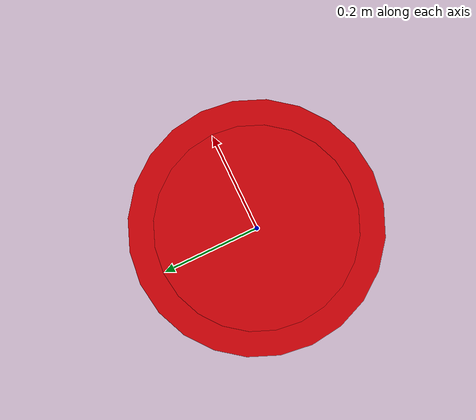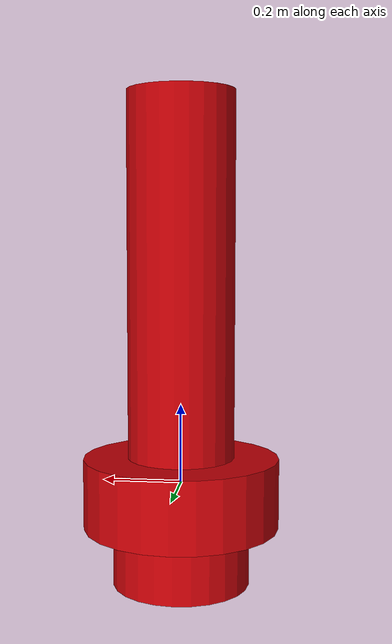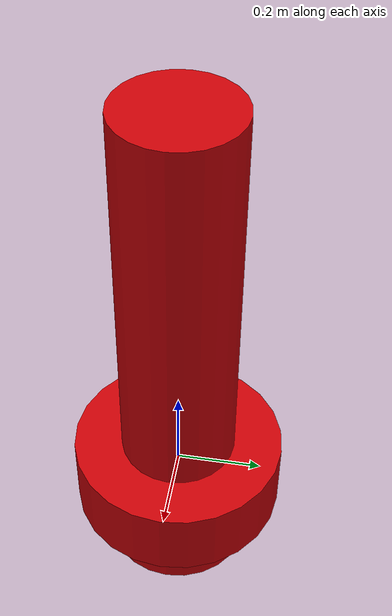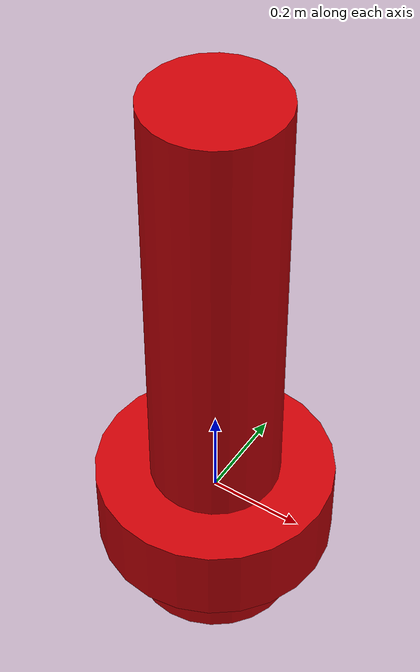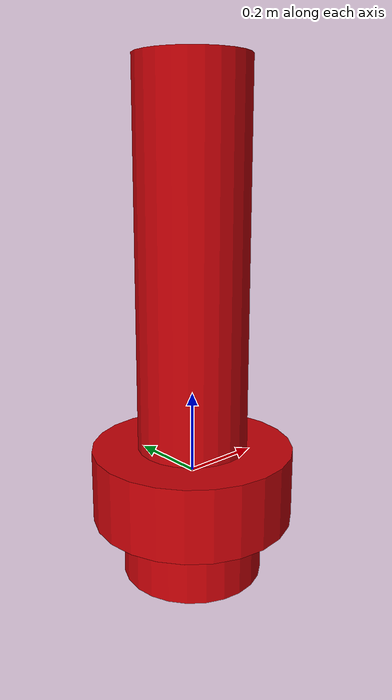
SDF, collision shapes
<?xml version="1.0"?>
<sdf version="1.9">
  <model name="roboboat_surmark_950410_red">
    <link name="link">
      <inertial>
        <pose>0 0 -0.2648 0 0 0</pose>
        <mass>34.8721</mass>
        <inertia>
          <ixx>4.73679</ixx>
          <ixy>0</ixy>
          <ixz>0</ixz>
          <iyy>4.73679</iyy>
          <iyz>0</iyz>
          <izz>0.392311</izz>
        </inertia>
      </inertial>
      <collision name="skirt_collision">
        <pose>0 0 -0.1899 0 0 0</pose>
        <geometry>
          <cylinder><radius>0.175</radius><length>0.1498</length></cylinder>
        </geometry>
      </collision>
      <collision name="ring_collision">
        <pose>0 0 -0.025 0 0 0</pose>
        <geometry>
          <cylinder><radius>0.25</radius><length>0.18</length></cylinder>
        </geometry>
      </collision>
      <collision name="column_collision">
        <pose>0 0 0.5251 0 0 0</pose>
        <geometry>
          <cylinder><radius>0.136</radius><length>0.9202</length></cylinder>
        </geometry>
      </collision>
      <visual name="visual">
        <geometry>
          <mesh>
            <uri>https://fuel.gazebosim.org/1.0/ngxingyu/models/surmark950410/tip/files/meshes/surmark950410.dae</uri>
          </mesh>
        </geometry>
        <material>
          <ambient>0.7921 0.0039 0.0274 1</ambient>
          <diffuse>0.7921 0.0039 0.0274 1</diffuse>
          <specular>0.7921 0.0039 0.0274 1</specular>
        </material>
      </visual>
    </link>
    <joint name="mooring" type="prismatic">
      <parent>world</parent>
      <child>link</child>
      <axis>
        <xyz>0 0 1</xyz>
      </axis>
    </joint>
    <plugin name="vrx::PolyhedraBuoyancyDrag" filename="libPolyhedraBuoyancyDrag.so">
      <linear_drag>25</linear_drag>
      <angular_drag>2</angular_drag>
      <buoyancy name="skirt">
        <link_name>link</link_name>
        <pose>0 0 -0.1899 0 0 0</pose>
        <geometry>
          <cylinder><radius>0.175</radius><length>0.1498</length></cylinder>
        </geometry>
      </buoyancy>
      <buoyancy name="ring">
        <link_name>link</link_name>
        <pose>0 0 -0.025 0 0 0</pose>
        <geometry>
          <cylinder><radius>0.25</radius><length>0.18</length></cylinder>
        </geometry>
      </buoyancy>
      <buoyancy name="column">
        <link_name>link</link_name>
        <pose>0 0 0.5251 0 0 0</pose>
        <geometry>
          <cylinder><radius>0.136</radius><length>0.9202</length></cylinder>
        </geometry>
      </buoyancy>
      <wavefield>
        <topic>/vrx/wavefield/parameters</topic>
      </wavefield>
    </plugin>
    <plugin filename="gz-sim-label-system" name="gz::sim::systems::Label">
      <label>10</label>
    </plugin>
  </model>
</sdf>
